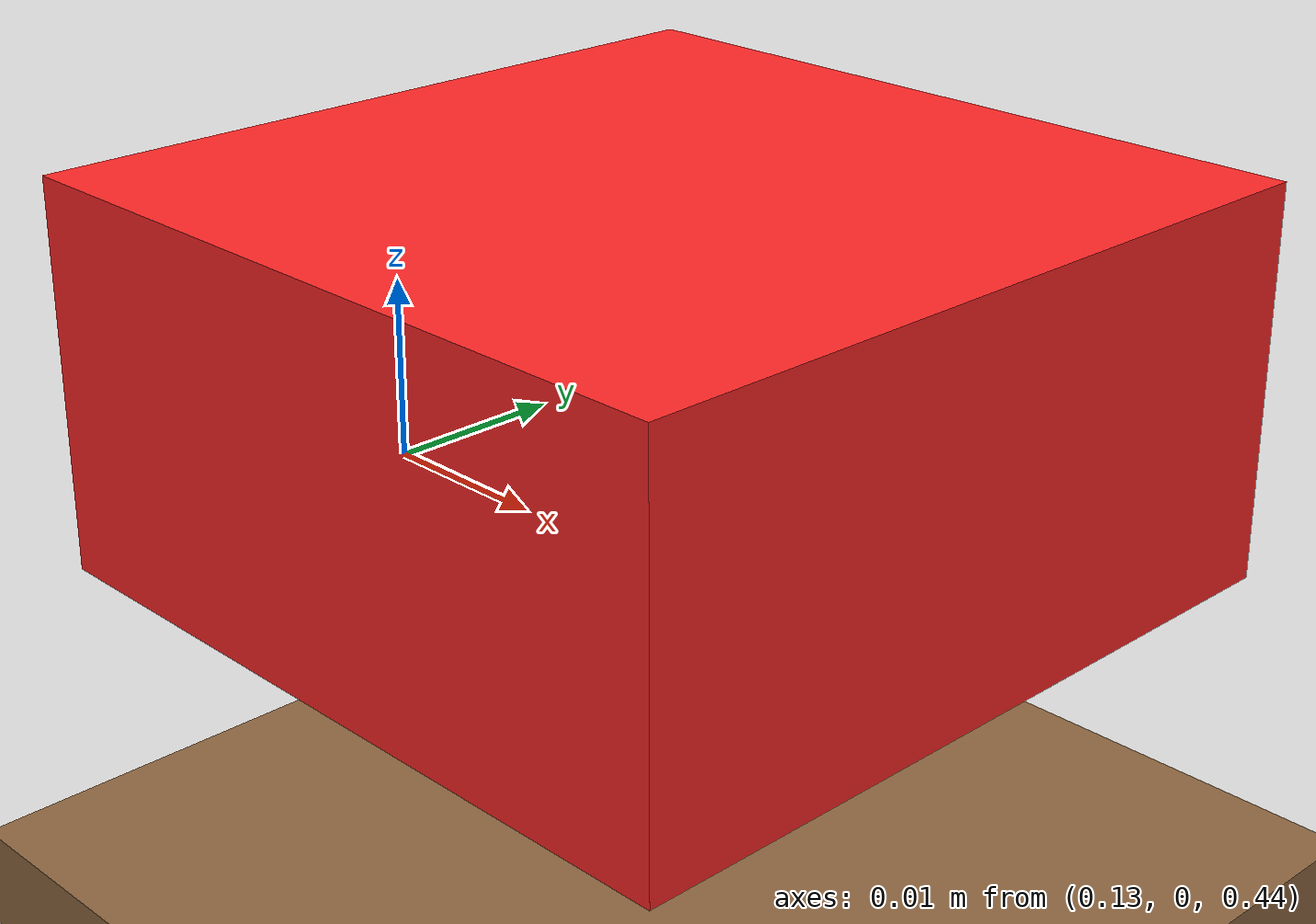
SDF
<?xml version="1.0" ?>
<!-- Minimal Gazebo (SDF 1.8) world: table + red target marker. Portfolio stub. -->
<sdf version="1.8">
  <world name="simreach_simple_table">
    <gravity>0 0 -9.8</gravity>
    <magnetic_field>6e-6 2.3e-5 -4.2e-5</magnetic_field>
    <atmosphere type="adiabatic"/>
    <physics name="default_physics" type="ode">
      <max_step_size>0.001</max_step_size>
      <real_time_factor>1.0</real_time_factor>
    </physics>
    <light type="directional" name="sun">
      <cast_shadows>true</cast_shadows>
      <pose>0 0 10 0 0 0</pose>
      <diffuse>0.8 0.8 0.8 1</diffuse>
      <specular>0.2 0.2 0.2 1</specular>
      <direction>-0.5 0.1 -0.9</direction>
    </light>
    <model name="ground_plane">
      <static>true</static>
      <link name="link">
        <collision name="collision">
          <geometry><plane><normal>0 0 1</normal></plane></geometry>
        </collision>
        <visual name="visual">
          <geometry><plane><normal>0 0 1</normal><size>20 20</size></plane></geometry>
          <material>
            <ambient>0.3 0.3 0.3 1</ambient>
            <diffuse>0.5 0.5 0.5 1</diffuse>
          </material>
        </visual>
      </link>
    </model>
    <model name="table">
      <static>true</static>
      <pose>0 0 0.4 0 0 0</pose>
      <link name="link">
        <collision name="collision">
          <geometry><box><size>0.8 0.6 0.05</size></box></geometry>
        </collision>
        <visual name="visual">
          <geometry><box><size>0.8 0.6 0.05</size></box></geometry>
          <material>
            <ambient>0.4 0.3 0.2 1</ambient>
            <diffuse>0.55 0.4 0.25 1</diffuse>
          </material>
        </visual>
      </link>
    </model>
    <!-- Red marker the color-blob detector is tuned for -->
    <model name="red_target">
      <static>true</static>
      <pose>0.15 0 0.45 0 0 0</pose>
      <link name="link">
        <visual name="visual">
          <geometry><box><size>0.04 0.04 0.02</size></box></geometry>
          <material>
            <ambient>0.9 0.1 0.1 1</ambient>
            <diffuse>1.0 0.15 0.15 1</diffuse>
          </material>
        </visual>
        <collision name="collision">
          <geometry><box><size>0.04 0.04 0.02</size></box></geometry>
        </collision>
      </link>
    </model>
  </world>
</sdf>
